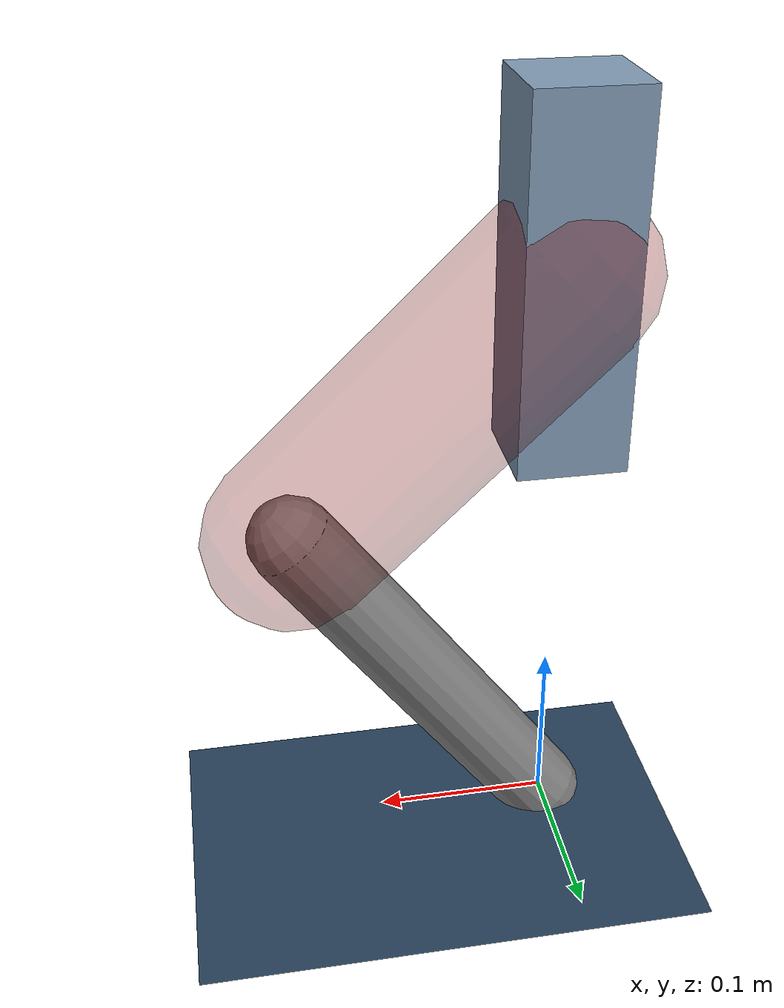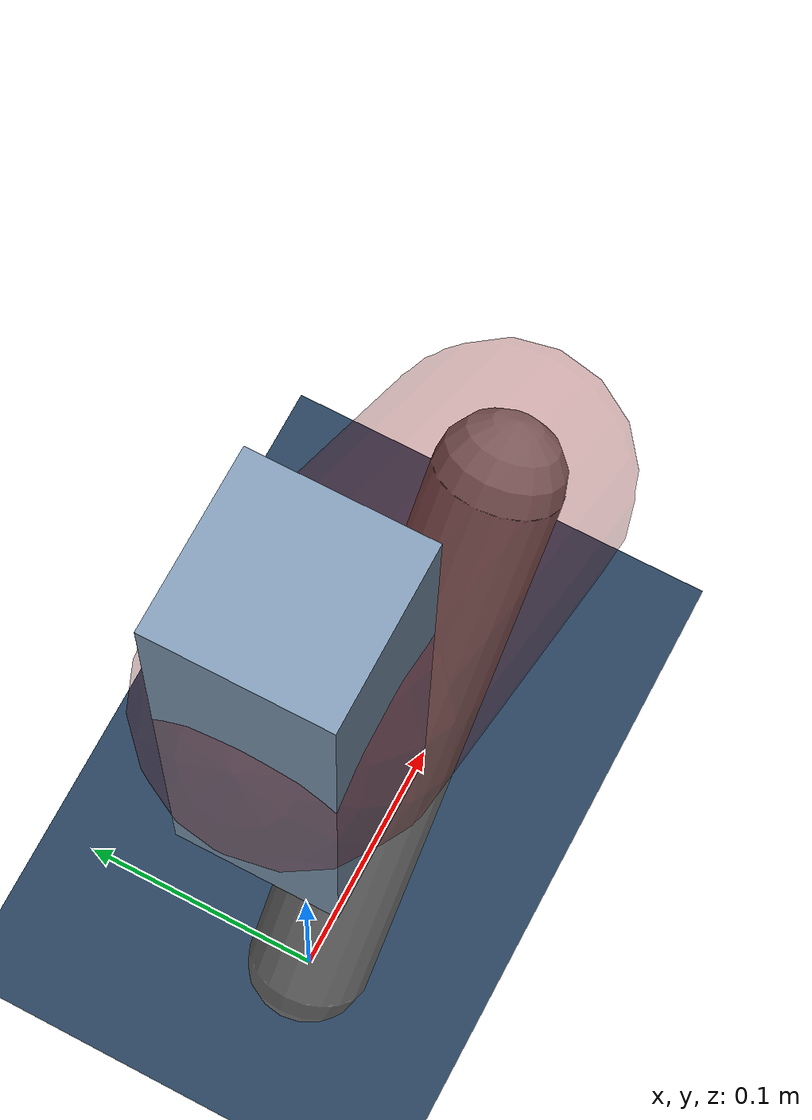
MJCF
<mujoco model="Hopper2D">
	<compiler inertiafromgeom="true" angle="radian" />
	<option timestep="0.001" integrator="implicit" cone="elliptic" solver="Newton" tolerance="1e-10" />

	<default>
		<geom contype="1" conaffinity="1" condim="3" friction="2 0.005 0.0001" solref="0.005 1" />
		<joint limited="true" damping="0.1" />
	</default>

	<asset>
		<texture name="skybox" type="skybox" builtin="gradient" rgb1=".4 .6 .8" rgb2="0 0 0" width="800" height="800" />
		<texture name="grid" type="2d" builtin="checker" rgb1=".1 .2 .3" rgb2=".2 .3 .4" width="300" height="300" mark="edge" markrgb=".2 .3 .4" />
		<material name="ground" texture="grid" texrepeat="1 1" texuniform="true" reflectance="0.1" />
		<material name="leg" rgba="0.5 0.6 0.7 1" />
	</asset>

	<worldbody>

		<geom name="floor" type="plane" size="5 5 0.25" material="ground" />

		<light directional="false" diffuse="0.8 0.8 0.8" specular="0.3 0.3 0.3" pos="0 0 2" dir="0 0 -1" />
		<light mode="targetbodycom" target="base" directional="false" diffuse="0.8 0.8 0.8" specular="0.3 0.3 0.3" pos="0 0 2" dir="0 0 -1" />

		<camera name="fixed" pos="0 -2 1" xyaxes="1 0 0 0 0 1" />
		<camera name="tracking" mode="trackcom" pos="0 -3 1" />

		<body name="root" pos="0 0 0.3404634935463303">
			<joint name="slide_x" type="slide" axis="1 0 0" range="-100 100" />
			<joint name="slide_z" type="slide" axis="0 0 1" range="0 10" />

			<body name="base" pos="0 0 0">
				<geom name="torso" type="box" size="0.03 0.03 0.1" mass="2.832" material="leg" />

				<body name="link1" pos="0 0 0" euler="0 0.7662576934372712 0">
					<joint type="hinge" axis="0 -1 0" pos="0 0 0" name="hinge1" limited="true" range="-3.14 3.14" stiffness="0" damping="0.1" />
					<geom name="thigh" type="capsule" fromto="0 0 0 0.20431245563674014 0 0" size="0.05" rgba="0.5 0 0 0.3" mass="0.7403811390918504" />

					<body name="link2" pos="0.20431245563674014 0 0" euler="0 1.4419630013174123 0">
						<joint type="hinge" axis="0 -1 0" pos="0 0 0" name="hinge2" limited="true" range="-3.14 3.14" stiffness="0" damping="0.1" />
						<geom name="shank" type="capsule" fromto="0 0 0 0.2473576061093385 0 0" size="0.025" mass="0.4403860848874708" />

					</body>
				</body>
			</body>
		</body>
	</worldbody>

	<actuator>
		<motor name="torque1" joint="hinge1" ctrlrange="-134.07847153771152 134.07847153771152" ctrllimited="true" gear="1" />
		<motor name="torque2" joint="hinge2" ctrlrange="-36.969450719856496 36.969450719856496" ctrllimited="true" gear="1" />
	</actuator>
</mujoco>
